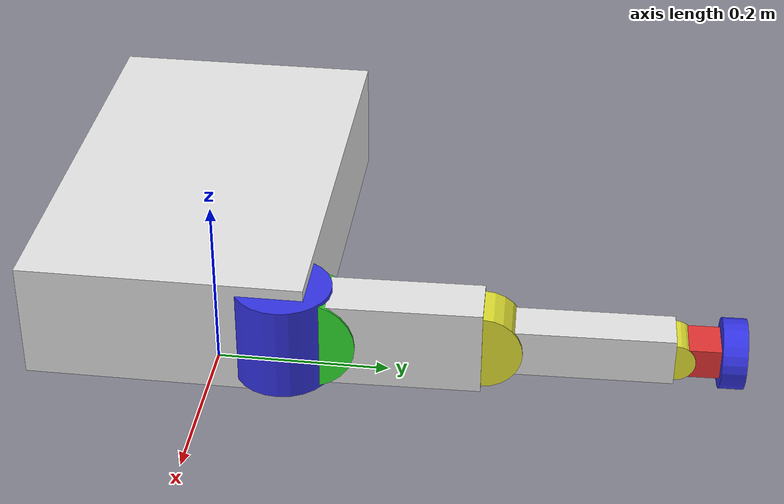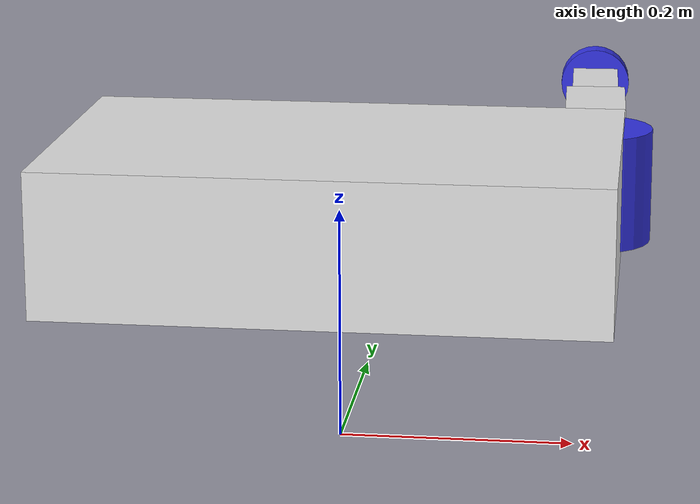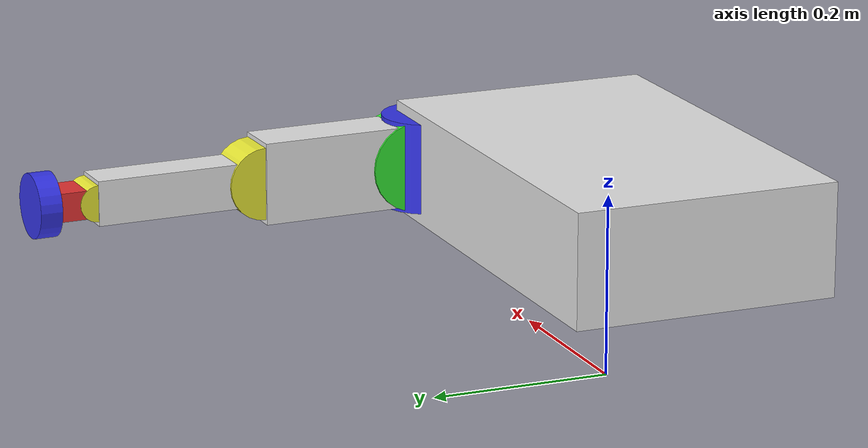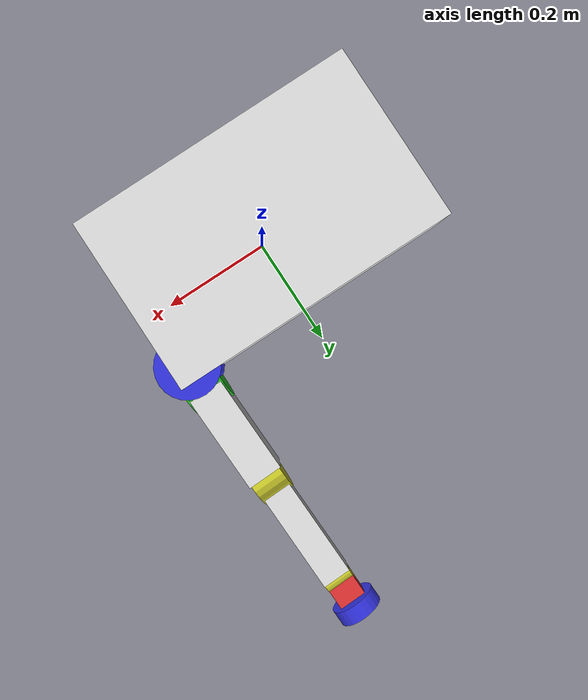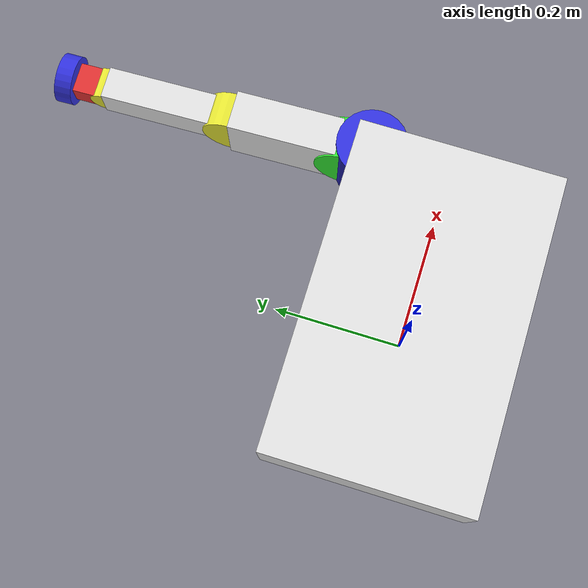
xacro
<robot name="rollerWalker_leg" xmlns:xacro="http://ros.org/wiki/xacro">
    <!-- 色の定義 -->
    <material name="red">
        <color rgba="0.9 0.2 0.2 1.0"/>
    </material>

    <material name="green">
        <color rgba="0.2 0.9 0.2 1.0"/>
    </material>

    <material name="blue">
        <color rgba="0.2 0.2 0.9 1.0"/>
    </material>

    <material name="yellow">
        <color rgba="0.9 0.9 0.2 1.0"/>
    </material>
    <material name="white">
        <color rgba="0.9 0.9 0.9 1.0"/>
    </material>

    <!-- 各パラメータ -->

    <!-- ボディ関連 -->
    <xacro:property name="body_z" value="0.2" /> <!-- ボディの高さ -->
    <xacro:property name="body_length" value="0.47" />
    <xacro:property name="body_width" value="0.29" />
    <xacro:property name="body_thickness" value="0.123" />
    <xacro:property name="body_mass" value="23.8" />
    <!-- ボディーのイナーシャ -->
    <xacro:property name="I_body_xx" value="${1/12*body_mass*(body_thickness*body_thickness + body_width*body_width)}" />
    <xacro:property name="I_body_yy" value="${1/12*body_mass*(body_length*body_length + body_thickness*body_thickness)}" />
    <xacro:property name="I_body_zz" value="${1/12*body_mass*(body_length*body_length + body_width*body_width)}" />

    <!-- 各リンクの長さ -->
    <xacro:property name="l2" value="0.2" />
    <xacro:property name="l3" value="0.243" />
    <xacro:property name="l4" value="0.031" />

    <!-- タイヤ関連 -->
    <xacro:property name="wheel_radius" value="0.035" />
    <xacro:property name="wheel_thickness" value="0.024" />
    <xacro:property name="wheel_mass" value="0.1" />
    <!-- タイヤのイナーシャ -->
    <xacro:property name="I_wheel_xx" value="${wheel_mass*(wheel_radius * wheel_radius/4 + wheel_thickness * wheel_thickness / 12)}" />
    <xacro:property name="I_wheel_yy" value="${wheel_mass*(wheel_radius * wheel_radius/4 + wheel_thickness * wheel_thickness / 12)}" />
    <xacro:property name="I_wheel_zz" value="${wheel_radius * wheel_radius * wheel_mass /2}" />                                             <!--1/2MR^2-->

    <!-- ジョイント1関連 -->
    <xacro:property name="joint_1_radius" value="0.05" />
    <xacro:property name="joint_1_thickness" value="0.1" />
    <xacro:property name="joint_1_mass" value="0.1" />
    <!-- ジョイント1のイナーシャ -->
    <xacro:property name="I_joint_1_xx" value="${joint_1_mass*(joint_1_radius * joint_1_radius/4 + joint_1_thickness * joint_1_thickness / 12)}" />
    <xacro:property name="I_joint_1_yy" value="${joint_1_mass*(joint_1_radius * joint_1_radius/4 + joint_1_thickness * joint_1_thickness / 12)}" />
    <xacro:property name="I_joint_1_zz" value="${joint_1_mass* joint_1_radius * joint_1_radius/2}" />                                                  <!--1/2MR^2-->

    <!-- ジョイント2関連 -->
    <xacro:property name="joint_2_radius" value="0.05" />
    <xacro:property name="joint_2_thickness" value="0.060" />
    <xacro:property name="joint_2_mass" value="0.1" />
    <!-- ジョイント2のイナーシャ -->
    <xacro:property name="I_joint_2_xx" value="${joint_2_mass*(joint_2_radius * joint_2_radius/4 + joint_2_thickness * joint_2_thickness / 12)}" />
    <xacro:property name="I_joint_2_yy" value="${joint_2_mass*(joint_2_radius * joint_2_radius/4 + joint_2_thickness * joint_2_thickness / 12)}" />
    <xacro:property name="I_joint_2_zz" value="${joint_2_mass* joint_2_radius * joint_2_radius/2}" />                                                  <!--1/2MR^2-->

    <!-- ジョイント3関連 -->
    <xacro:property name="joint_3_radius" value="0.04" />
    <xacro:property name="joint_3_thickness" value="0.05" />
    <xacro:property name="joint_3_mass" value="0.1" />
    <!-- ジョイント3のイナーシャ -->
    <xacro:property name="I_joint_3_xx" value="${joint_3_mass*(joint_3_radius * joint_3_radius/4 + joint_3_thickness * joint_3_thickness / 12)}" />
    <xacro:property name="I_joint_3_yy" value="${joint_3_mass*(joint_3_radius * joint_3_radius/4 + joint_3_thickness * joint_3_thickness / 12)}" />
    <xacro:property name="I_joint_3_zz" value="${joint_3_mass* joint_3_radius * joint_3_radius/2}" />                                                  <!--1/2MR^2-->

    <!-- ジョイント4関連 -->
    <xacro:property name="joint_4_radius" value="0.02" />
    <xacro:property name="joint_4_thickness" value="0.044" />
    <xacro:property name="joint_4_mass" value="0.1" />
    <!-- ジョイント4のイナーシャ -->
    <xacro:property name="I_joint_4_xx" value="${joint_4_mass*(joint_4_radius * joint_4_radius/4 + joint_4_thickness * joint_4_thickness / 12)}" />
    <xacro:property name="I_joint_4_yy" value="${joint_4_mass*(joint_4_radius * joint_4_radius/4 + joint_4_thickness * joint_4_thickness / 12)}" />
    <xacro:property name="I_joint_4_zz" value="${joint_4_mass* joint_4_radius * joint_4_radius/2}" />                                                  <!--1/2MR^2-->

    <!-- 摩擦力 -->
    <xacro:property name="mu_1" value="0.417" />
    <xacro:property name="mu_2" value="0.0264" />

    <!-- 各足の長さはlink_n_xの値を変えれば良い -->
    <!-- リンク2関連 -->
    <xacro:property name="link_2_x" value="0.2" />
    <xacro:property name="link_2_y" value="0.055" />
    <xacro:property name="link_2_z" value="0.09" />
    <xacro:property name="link_2_mass" value="0.1" />
    <!-- リンク2のイナーシャ -->
    <xacro:property name="I_link_2_xx" value="${1/12*link_2_mass*(link_2_y*link_2_y + link_2_z*link_2_z)}" />
    <xacro:property name="I_link_2_yy" value="${1/12*link_2_mass*(link_2_x*link_2_x + link_2_z*link_2_z)}" />
    <xacro:property name="I_link_2_zz" value="${1/12*link_2_mass*(link_2_x*link_2_x + link_2_y*link_2_y)}" />

    <!-- リンク3関連 -->
    <xacro:property name="link_3_x" value="0.188" />
    <xacro:property name="link_3_y" value="0.045" />
    <xacro:property name="link_3_z" value="0.049" />
    <xacro:property name="link_3_mass" value="0.1" />
    <!-- リンク3のイナーシャ -->
    <xacro:property name="I_link_3_xx" value="${1/12*link_3_mass*(link_3_y*link_3_y + link_3_z*link_3_z)}" />
    <xacro:property name="I_link_3_yy" value="${1/12*link_3_mass*(link_3_x*link_3_x + link_3_z*link_3_z)}" />
    <xacro:property name="I_link_3_zz" value="${1/12*link_3_mass*(link_3_x*link_3_x + link_3_y*link_3_y)}" />

    <!-- リンク4関連 -->
    <xacro:property name="link_4_x" value="0.044" />
    <xacro:property name="link_4_y" value="0.043" />
    <xacro:property name="link_4_z" value="0.031" />
    <xacro:property name="link_4_mass" value="0.1" />
    <!-- リンク4のイナーシャ -->
    <xacro:property name="I_link_4_xx" value="${1/12*link_4_mass*(link_4_y*link_4_y + link_4_z*link_4_z)}" />
    <xacro:property name="I_link_4_yy" value="${1/12*link_4_mass*(link_4_x*link_4_x + link_4_z*link_4_z)}" />
    <xacro:property name="I_link_4_zz" value="${1/12*link_4_mass*(link_4_x*link_4_x + link_4_y*link_4_y)}" />

    <!-- ジョイントのダンピング係数 -->
    <xacro:property name="body_to_joint_1_damping" value="0.1" />   <!-- ボディーからジョイント1のダンピング係数 -->
    <xacro:property name="joint_1_to_joint_2_damping" value="0.1" />   <!-- ジョイント1からジョイント2のダンピング係数 -->
    <xacro:property name="joint_2_to_link_2_damping" value="0.1" />   <!-- ジョイント2からリンク2のダンピング係数 -->
    <xacro:property name="link_2_to_joint_3_damping" value="0.1" />   <!-- リンク2からジョイント3のダンピング係数 -->
    <xacro:property name="joint_3_to_link_3_damping" value="0.1" />   <!-- ジョイント3からリンク3のダンピング係数 -->
    <xacro:property name="link_3_to_joint_4_damping" value="0.1" />   <!-- リンク3からジョイント4のダンピング係数 -->
    <xacro:property name="joint_4_to_link_4_damping" value="0.1" />   <!-- ジョイント4からリンク4のダンピング係数 -->
    <xacro:property name="link_4_to_wheel_damping" value="0.1" />   <!-- リンク4からホイールのダンピング係数 -->

    <!-- 脚のマクロ -->
    <xacro:macro name="leg_macro" params="leg_posi">
        <!-- ジョイント１とジョイント２の設定 -->
        <joint name="joint_1_${leg_posi}_to_joint_2_${leg_posi}" type="revolute">
            <axis xyz="0 0 1"/>
            <parent link="joint_1_${leg_posi}"/>
            <child  link="joint_2_${leg_posi}"/>
            <origin rpy="1.57070 0 0" xyz="0 0 0"/>
            <dynamics damping="${joint_1_to_joint_2_damping}"/>
            <limit lower="-1.5" upper="1.5" effort="0" velocity="0"/>
        </joint>

        <!-- ジョイント2のトランスミッション -->
        <transmission name="joint_2_${leg_posi}_trans" >
            <type>transmission_interface/SimpleTransmission</type>
            <actuator name="$joint_2_${leg_posi}_motor">
                <mechanicalReduction>1</mechanicalReduction>
            </actuator>
            <joint name="joint_1_${leg_posi}_to_joint_2_${leg_posi}">
                <hardwareInterface>hardware_interface/PositionJointInterface</hardwareInterface>
            </joint>
         </transmission>

        <!-- ジョイント２の描画 -->
        <link name = "joint_2_${leg_posi}">
            <inertial>
                <mass value="${joint_2_mass}"/>
                <origin xyz="${joint_1_radius/2} 0 0.0" rpy="0 0 0"/>
                <inertia ixx="${I_joint_2_xx}" ixy="0.0" ixz="0.0" iyy="${I_joint_2_yy}" iyz="0.0" izz="${I_joint_2_zz}"/>
            </inertial>
            <visual>
                <geometry>
                    <cylinder radius="${joint_2_radius}" length="${joint_2_thickness}"/>
                </geometry>
                <origin xyz="${joint_1_radius/2} 0 0.0" rpy="0 0 0"/>
                <material name = "green"/>
            </visual>
            <collision>
                <origin xyz="${joint_1_radius/2} 0 0.0" rpy="0 0 0"/>
                <geometry>
                    <cylinder radius="${joint_2_radius}" length="${joint_2_thickness}"/>
                </geometry>
            </collision>
        </link>
        <gazebo reference="joint_2_${leg_posi}">
            <material>Gazebo/Green</material>
        </gazebo>

        <!-- ジョイント２とリンク２の設定 -->
        <joint name="joint_2_${leg_posi}_to_link_2_${leg_posi}" type="fixed">
            <axis xyz="0 0 1"/>
            <parent link="joint_2_${leg_posi}"/>
            <child  link="link_2_${leg_posi}"/>
            <dynamics damping="${joint_2_to_link_2_damping}"/>
            <origin rpy="-1.57070 0 0" xyz="0 0 0"/>
        </joint>

        <!-- リンク2の描画 -->
        <link name = "link_2_${leg_posi}">
            <inertial>
                <mass value="${link_2_mass}"/>
                <origin xyz="${link_2_x/2} 0 0.0" rpy="0 0 0"/>
                <inertia ixx="${I_link_2_xx}" ixy="0.0" ixz="0.0" iyy="${I_link_2_yy}" iyz="0.0" izz="${I_link_2_zz}"/>
            </inertial>
            <visual>
                <geometry>
                    <box size = "${link_2_x} ${link_2_y} ${link_2_z}" />
                </geometry>
                <origin xyz="${link_2_x/2} 0 0.0" rpy="0 0 0"/>
                <material name = "white"/>
            </visual>
            <collision>
                <origin xyz="${link_2_x/2} 0 0.0" rpy="0 0 0"/>
                <geometry>
                    <box size = "${link_2_x} ${link_2_y} ${link_2_z}" />
                </geometry>
            </collision>
        </link>
        <gazebo reference="link_2_${leg_posi}">
            <material>Gazebo/White</material>
        </gazebo>

        <!-- リンク2とジョイント3の設定 -->
        <joint name="link_2_${leg_posi}_to_joint_3_${leg_posi}" type="revolute">
            <axis xyz="0 0 1"/>
            <parent link="link_2_${leg_posi}"/>
            <child  link="joint_3_${leg_posi}"/>
            <origin rpy="1.57070 0 0" xyz="${link_2_x} 0 0"/>
            <dynamics damping="${link_2_to_joint_3_damping}"/>
            <limit lower="-2.0" upper="1.5" effort="0" velocity="0"/>
        </joint>

        <!-- ジョイント3のトランスミッション -->
        <transmission name="joint_3_${leg_posi}_trans" >
            <type>transmission_interface/SimpleTransmission</type>
            <actuator name="$joint_3_${leg_posi}_motor">
                <mechanicalReduction>1</mechanicalReduction>
            </actuator>
            <joint name="link_2_${leg_posi}_to_joint_3_${leg_posi}">
                <hardwareInterface>hardware_interface/PositionJointInterface</hardwareInterface>
            </joint>
         </transmission>

        <!-- ジョイント3の描画 -->
        <link name = "joint_3_${leg_posi}">
            <inertial>
                <mass value="${joint_3_mass}"/>
                <origin xyz="0 0 0.0" rpy="0 0 0"/>
                <inertia ixx="${I_joint_3_xx}" ixy="0.0" ixz="0.0" iyy="${I_joint_3_yy}" iyz="0.0" izz="${I_joint_3_zz}"/>
            </inertial>
            <visual>
                <geometry>
                    <cylinder radius="${joint_3_radius}" length="${joint_3_thickness}"/>
                </geometry>
                <origin xyz="0 0 0.0" rpy="0 0 0"/>
                <material name = "yellow"/>
            </visual>
            <collision>
                <origin xyz="0 0 0.0" rpy="0 0 0"/>
                <geometry>
                    <cylinder radius="${joint_3_radius}" length="${joint_3_thickness}"/>
                </geometry>
            </collision>
        </link>
        <gazebo reference="joint_3_${leg_posi}">
            <material>Gazebo/Yellow</material>
        </gazebo>

        <!-- ジョイント3とリンク3の設定 -->
        <joint name="joint_3_${leg_posi}_to_link_3_${leg_posi}" type="fixed">
            <axis xyz="0 0 1"/>
            <parent link="joint_3_${leg_posi}"/>
            <child  link="link_3_${leg_posi}"/>
            <dynamics damping="${joint_3_to_link_3_damping}"/>
            <origin rpy="-1.57070 0 0" xyz="0 0 0"/>
        </joint>

        <link name = "link_3_${leg_posi}">
            <inertial>
                <mass value="${link_3_mass}"/>
                <origin xyz="${link_3_x/2} 0 0.0" rpy="0 0 0"/>
                <inertia ixx="${I_link_3_xx}" ixy="0.0" ixz="0.0" iyy="${I_link_3_yy}" iyz="0.0" izz="${I_link_3_zz}"/>
            </inertial>
            <visual>
                <geometry>
                    <box size = "${link_3_x} ${link_3_y} ${link_3_z}" />
                </geometry>
                <origin xyz="${link_3_x/2} 0 0.0" rpy="0 0 0"/>
                <material name = "white"/>
            </visual>
            <collision>
                <origin xyz="${link_3_x/2} 0 0.0" rpy="0 0 0"/>
                <geometry>
                    <box size = "${link_3_x} ${link_3_y} ${link_3_z}" />
                </geometry>
            </collision>
        </link>
        <gazebo reference="link_3_${leg_posi}">
            <material>Gazebo/White</material>
        </gazebo>

        <!-- リンク3とジョイント4の設定 -->
        <joint name="link_3_${leg_posi}_to_joint_4_${leg_posi}" type="revolute">
            <axis xyz="0 0 1"/>
            <parent link="link_3_${leg_posi}"/>
            <child  link="joint_4_${leg_posi}"/>
            <origin rpy="1.57070 0 0" xyz="${link_3_x} 0 0"/>
            <dynamics damping="${link_3_to_joint_4_damping}"/>
            <limit lower="-2.0" upper="1.5" effort="0" velocity="0"/>
        </joint>

        <!-- ジョイント3のトランスミッション -->
        <transmission name="joint_4_${leg_posi}_trans" >
            <type>transmission_interface/SimpleTransmission</type>
            <actuator name="$joint_4_${leg_posi}_motor">
                <mechanicalReduction>1</mechanicalReduction>
            </actuator>
            <joint name="link_3_${leg_posi}_to_joint_4_${leg_posi}">
                <hardwareInterface>hardware_interface/PositionJointInterface</hardwareInterface>
            </joint>
         </transmission>

        <!-- ジョイント4の描画 -->
        <link name = "joint_4_${leg_posi}">
            <inertial>
                <mass value="${joint_4_mass}"/>
                <origin xyz="0 0 0.0" rpy="0 0 0"/>
                <inertia ixx="${I_joint_4_xx}" ixy="0.0" ixz="0.0" iyy="${I_joint_4_yy}" iyz="0.0" izz="${I_joint_4_zz}"/>
            </inertial>
            <visual>
                <geometry>
                    <cylinder radius="${joint_4_radius}" length="${joint_4_thickness}"/>
                </geometry>
                <origin xyz="0 0 0.0" rpy="0 0 0"/>
                <material name = "yellow"/>
            </visual>
            <collision>
                <origin xyz="0 0 0.0" rpy="0 0 0"/>
                <geometry>
                    <cylinder radius="${joint_4_radius}" length="${joint_4_thickness}"/>
                </geometry>
            </collision>
        </link>
        <gazebo reference="joint_4_${leg_posi}">
            <material>Gazebo/Yellow</material>
        </gazebo>

        <!-- ジョイント4とリンク4の描画 -->
        <joint name="joint_4_${leg_posi}_to_link_4_${leg_posi}" type="fixed">
            <axis xyz="0 0 1"/>
            <parent link="joint_4_${leg_posi}"/>
            <child  link="link_4_${leg_posi}"/>
            <origin rpy="-1.57070 0 0" xyz="0 0 0"/>
            <dynamics damping="${joint_4_to_link_4_damping}"/>
        </joint>

        <link name = "link_4_${leg_posi}">
            <inertial>
                <mass value="${link_4_mass}"/>
                <origin xyz="${link_4_x/2} 0 0.0" rpy="0 0 0"/>
                <inertia ixx="${I_link_4_xx}" ixy="0.0" ixz="0.0" iyy="${I_link_4_yy}" iyz="0.0" izz="${I_link_4_zz}"/>
            </inertial>
            <visual>
                <geometry>
                    <box size = "${link_4_x} ${link_4_y} ${link_4_z}" />
                </geometry>
                <origin xyz="${link_4_x/2} 0 0.0" rpy="0 0 0"/>
                <material name = "red"/>
            </visual>
            <collision>
                <origin xyz="${link_4_x/2} 0 0.0" rpy="0 0 0"/>
                <geometry>
                    <box size = "${link_4_x} ${link_4_y} ${link_4_z}" />
                </geometry>
            </collision>
        </link>
        <gazebo reference="link_4_${leg_posi}">
            <material>Gazebo/Red</material>
        </gazebo>

        <!-- リンク4とホイールの設定 -->
        <joint name="link_4_${leg_posi}_to_wheel_${leg_posi}" type="continuous">
            <axis xyz="0 0 1"/>
            <parent link="link_4_${leg_posi}"/>
            <child  link="wheel_${leg_posi}"/>
            <origin rpy="0 1.57070 0" xyz="${link_4_x + wheel_thickness/2} 0 0"/>
            <dynamics damping="${link_4_to_wheel_damping}"/>
        </joint>

        <!-- ジョイント3のトランスミッション -->
        <transmission name="wheel_trans" >
            <type>transmission_interface/SimpleTransmission</type>
            <actuator name="$wheel_motor">
                <mechanicalReduction>1</mechanicalReduction>
            </actuator>
            <joint name="link_4_${leg_posi}_to_wheel_${leg_posi}">
                <hardwareInterface>hardware_interface/PositionJointInterface</hardwareInterface>
            </joint>
         </transmission>

        <!-- ホイールの描画 -->
        <link name = "wheel_${leg_posi}">
            <inertial>
                <mass value="${wheel_mass}"/>
                <origin xyz="0 0 0.0" rpy="0 0 0"/>
                <inertia ixx="${I_wheel_xx}" ixy="0.0" ixz="0.0" iyy="${I_wheel_yy}" iyz="0.0" izz="${I_wheel_zz}"/>
            </inertial>
            <visual>
                <geometry>
                    <cylinder radius="${wheel_radius}" length="${wheel_thickness}"/>
                </geometry>
                <origin xyz="0 0 0.0" rpy="0 0 0"/>
                <material name = "blue"/>
            </visual>
            <collision>
                <origin xyz="0 0 0.0" rpy="0 0 0"/>
                <geometry>
                    <cylinder radius="${wheel_radius}" length="${wheel_thickness}"/>
                </geometry>
            </collision>
        </link>
        <gazebo reference="wheel_${leg_posi}">
            <material>Gazebo/Blue</material>
            <mu1>${mu_1}</mu1>
            <mu2>${mu_2}</mu2>
        </gazebo>

    </xacro:macro>

    <!-- 本体の描画 -->
    <link name="base_link"/>

    <joint name="base_to_body" type="fixed">
        <parent link="base_link"/>
        <child  link="body"/>
        <origin xyz="0 0 ${body_z}" rpy="0 0 0"/>
    </joint>

    <!-- ボディ -->
    <link name = "body">
        <inertial>
            <origin xyz="0 0 0.0" rpy="0 0 0"/>
            <mass value ="${body_mass}"/>
            <inertia ixx="${I_body_xx}" ixy="0.0" ixz="0.0" iyy="${I_body_yy}" iyz="0.0" izz="${I_body_zz}"/>
        </inertial>
        <visual>
            <geometry>
                <box size = "${body_length} ${body_width} ${body_thickness}" />
            </geometry>
            <origin xyz="0 0 0.0" rpy="0 0 0"/>
            <material name = "white"/>
        </visual>

        <collision>
            <geometry>
                <box size = "${body_length} ${body_width} ${body_thickness}" />
            </geometry>
            <origin xyz="0 0 0" rpy="0 0 0"/>
        </collision>
    </link>
    <gazebo reference="body">
        <material>Gazebo/White</material>
    </gazebo>

    <!-- ジョイント1_LF -->
    <joint name="body_to_joint_1_lf" type="revolute">
        <parent link="body"/>
        <child  link="joint_1_lf"/>
        <axis xyz="0 0 1"/>
        <origin xyz="${body_length/2 - joint_1_radius/2} ${body_width/2 - joint_1_radius/2} 0.0" rpy="0 0 0"/>
        <dynamics damping="${body_to_joint_1_damping}"/>
        <limit lower="0.2" upper="3" effort="0" velocity="0"/>
    </joint>

    <!-- ジョイント1_LFトランスミッション設定 -->
    <transmission name="joint_1_lf_trans" >
        <type>transmission_interface/SimpleTransmission</type>
        <actuator name="$joint_1_lf_motor">
          <mechanicalReduction>1</mechanicalReduction>
        </actuator>
        <joint name="body_to_joint_1_lf">
            <hardwareInterface>hardware_interface/PositionJointInterface</hardwareInterface>
        </joint>
    </transmission>

     <link name = "joint_1_lf">
        <inertial>
            <mass value="${joint_1_mass}"/>
            <origin xyz="0 0 0" rpy="0 0 0"/>
            <inertia ixx="${I_joint_1_xx}" ixy="0.0" ixz="0.0" iyy="${I_joint_1_yy}" iyz="0.0" izz="${I_joint_1_zz}"/>
        </inertial>
        <visual>
            <geometry>
                <cylinder radius="${joint_1_radius}" length="${joint_1_thickness}"/>
            </geometry>
            <origin xyz="0 0 0" rpy="0 0 0"/>
            <material name = "blue"/>
        </visual>
        <collision>
            <origin xyz="0 0 0" rpy="0 0 0"/>
            <geometry>
                <cylinder radius="${joint_1_radius}" length="${joint_1_thickness}"/>
            </geometry>
        </collision>
    </link>
    <gazebo reference="joint_1_lf">
        <material>Gazebo/Blue</material>
    </gazebo>

    <!-- 脚のマクロの呼び出し -->
    <xacro:leg_macro leg_posi="lf"/>

    <gazebo>
        <plugin name="gazebo_ros_control" filename="libgazebo_ros_control.so">
            <robotNamespace>/rollerWalker</robotNamespace>
            <robotSimType>gazebo_ros_control/DefaultRobotHWSim</robotSimType>
            <legacyModeNS>true</legacyModeNS>
        </plugin>
    </gazebo>
</robot>
